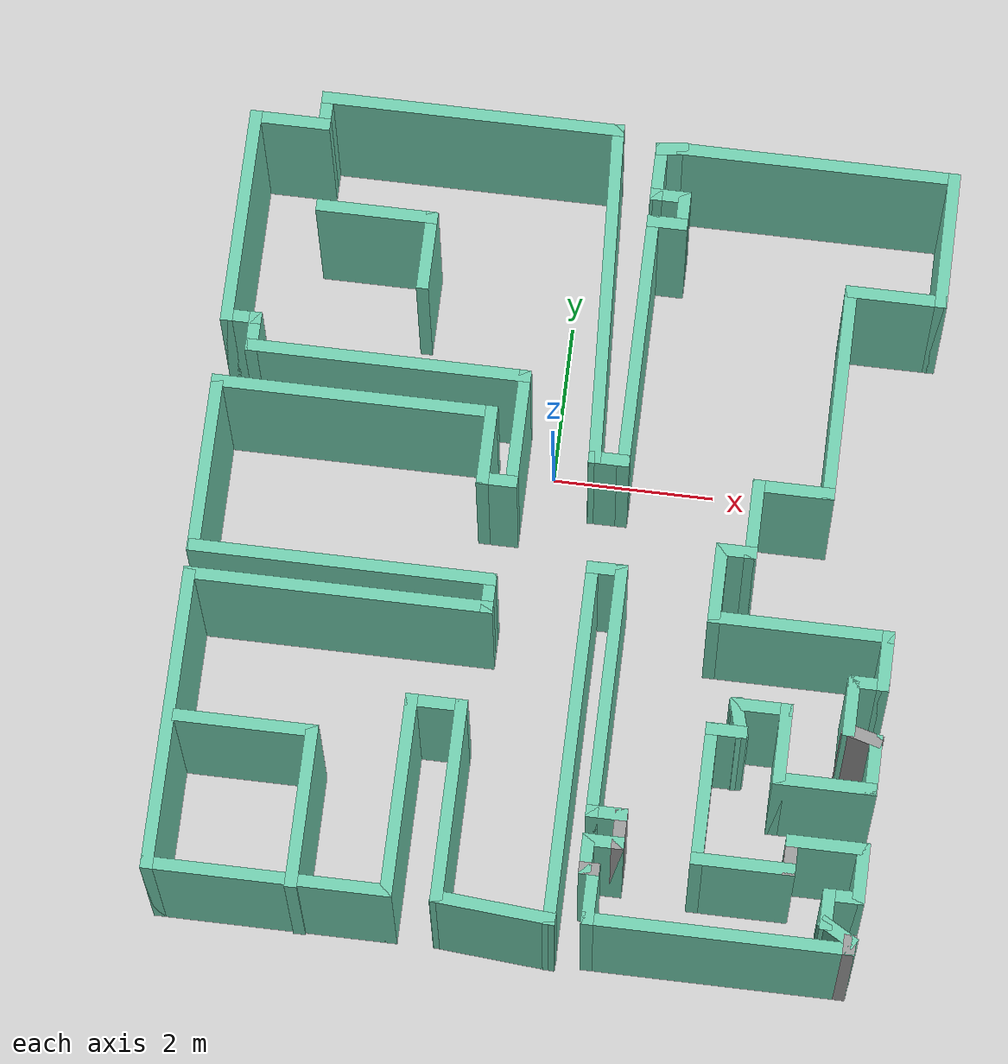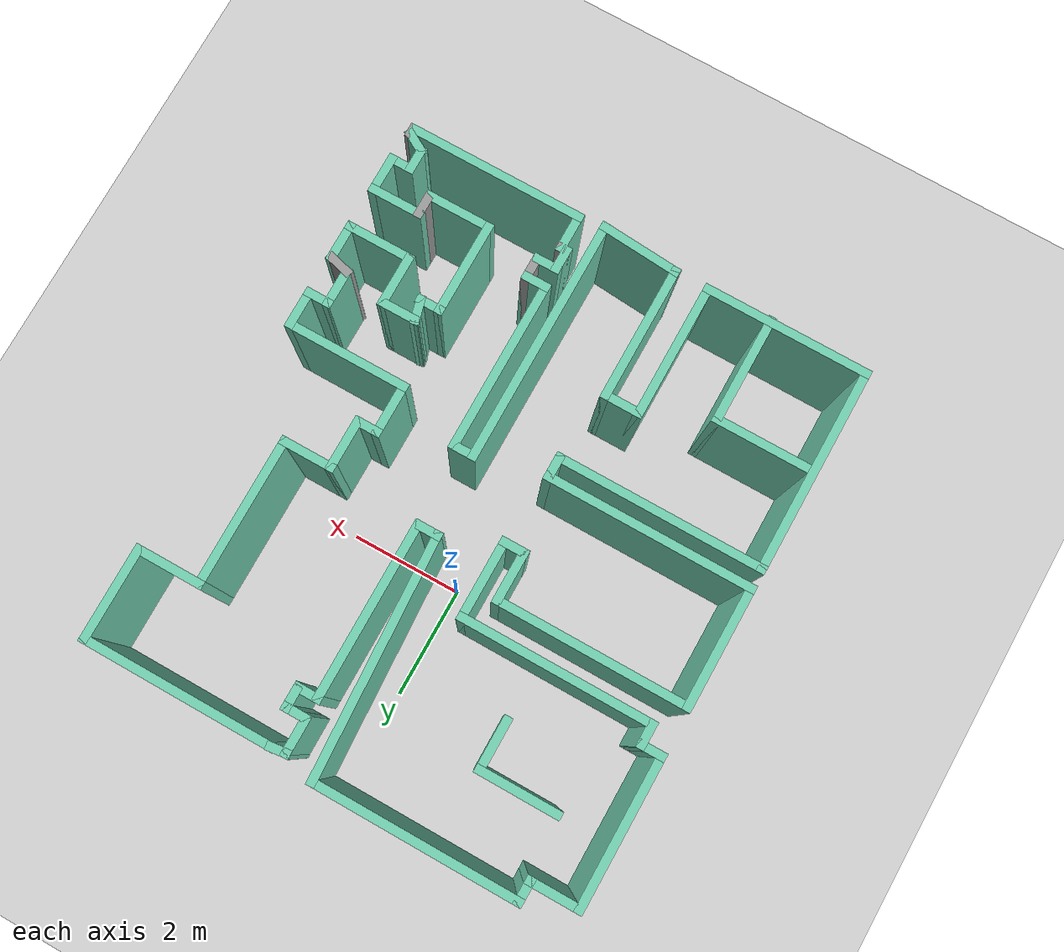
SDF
<sdf version="1.6">
 <world name="default">
  <light name="sun" type="directional">
   <pose>0 0 10 0 -0 0</pose>
   <diffuse>0.8 0.8 0.8 1</diffuse>
   <specular>0.2 0.2 0.2 1</specular>
   <attenuation>
    <range>1000</range>
    <constant>0.9</constant>
    <linear>0.01</linear>
    <quadratic>0.001</quadratic>
   </attenuation>
   <direction>-0.5 0.1 -0.9</direction>
  </light>
  <model name="ground_plane">
   <static>1</static>
   <link name="link">
    <collision name="collision">
     <geometry><plane><normal>0 0 1</normal><size>100 100</size></plane></geometry>
     <surface>
      <contact><collide_bitmask>65535</collide_bitmask></contact>
      <friction><ode><mu>100</mu><mu2>50</mu2></ode></friction>
     </surface>
    </collision>
    <visual name="visual">
     <cast_shadows>0</cast_shadows>
     <geometry><plane><normal>0 0 1</normal><size>100 100</size></plane></geometry>
     <material>
      <script><uri>file://media/materials/scripts/gazebo.material</uri><name>Gazebo/Grey</name></script>
     </material>
    </visual>
   </link>
  </model>
  <gravity>0 0 -9.8</gravity>
  <magnetic_field>6e-06 2.3e-05 -4.2e-05</magnetic_field>
  <atmosphere type="adiabatic"/>
  <physics name="default_physics" default="0" type="ode">
   <max_step_size>0.001</max_step_size>
   <real_time_factor>1</real_time_factor>
   <real_time_update_rate>1000</real_time_update_rate>
  </physics>
  <scene><ambient>0.4 0.4 0.4 1</ambient><background>0.7 0.7 0.7 1</background><shadows>1</shadows></scene>
  <audio><device>default</device></audio>
  <spherical_coordinates>
   <surface_model>EARTH_WGS84</surface_model>
   <latitude_deg>0</latitude_deg>
   <longitude_deg>0</longitude_deg>
   <elevation>0</elevation>
   <heading_deg>0</heading_deg>
  </spherical_coordinates>
  <model name="map_58">
   <pose>0.196193 -1.18097 0 0 -0 0</pose>
   <link name="Wall_0">
    <collision name="Wall_0_Collision">
     <geometry><box><size>3.75 0.15 2.5</size></box></geometry>
     <pose>0 0 1.25 0 -0 0</pose>
    </collision>
    <visual name="Wall_0_Visual">
     <pose>0 0 1.25 0 -0 0</pose>
     <geometry><box><size>3.75 0.15 2.5</size></box></geometry>
     <material>
      <script><uri>file://media/materials/scripts/gazebo.material</uri><name>Gazebo/Grey</name></script>
      <ambient>0.435294 0.796078 0.67451 1</ambient>
     </material>
     <meta><layer>0</layer></meta>
    </visual>
    <pose>-1.65911 4.97874 0 0 -0 3.14159</pose>
   </link>
   <link name="Wall_1">
    <collision name="Wall_1_Collision">
     <geometry><box><size>0.5 0.15 2.5</size></box></geometry>
     <pose>0 0 1.25 0 -0 0</pose>
    </collision>
    <visual name="Wall_1_Visual">
     <pose>0 0 1.25 0 -0 0</pose>
     <geometry><box><size>0.5 0.15 2.5</size></box></geometry>
     <material>
      <script><uri>file://media/materials/scripts/gazebo.material</uri><name>Gazebo/Grey</name></script>
      <ambient>0.435294 0.796078 0.67451 1</ambient>
     </material>
     <meta><layer>0</layer></meta>
    </visual>
    <pose>-3.45912 4.80374 0 0 -0 -1.5708</pose>
   </link>
   <link name="Wall_10">
    <collision name="Wall_10_Collision">
     <geometry><box><size>0.5 0.15 2.5</size></box></geometry>
     <pose>0 0 1.25 0 -0 0</pose>
    </collision>
    <visual name="Wall_10_Visual">
     <pose>0 0 1.25 0 -0 0</pose>
     <geometry><box><size>0.5 0.15 2.5</size></box></geometry>
     <material>
      <script><uri>file://media/materials/scripts/gazebo.material</uri><name>Gazebo/Grey</name></script>
      <ambient>0.435294 0.796078 0.67451 1</ambient>
     </material>
     <meta><layer>0</layer></meta>
    </visual>
    <pose>-0.784115 0.328738 0 0 -0 3.14159</pose>
   </link>
   <link name="Wall_13">
    <collision name="Wall_13_Collision">
     <geometry><box><size>1 0.15 2.5</size></box></geometry>
     <pose>0 0 1.25 0 -0 0</pose>
    </collision>
    <visual name="Wall_13_Visual">
     <pose>0 0 1.25 0 -0 0</pose>
     <geometry><box><size>1 0.15 2.5</size></box></geometry>
     <material>
      <script><uri>file://media/materials/scripts/gazebo.material</uri><name>Gazebo/Grey</name></script>
      <ambient>0.435294 0.796078 0.67451 1</ambient>
     </material>
     <meta><layer>0</layer></meta>
    </visual>
    <pose>-0.959115 0.753738 0 0 -0 1.5708</pose>
   </link>
   <link name="Wall_14">
    <collision name="Wall_14_Collision">
     <geometry><box><size>3.5 0.15 2.5</size></box></geometry>
     <pose>0 0 1.25 0 -0 0</pose>
    </collision>
    <visual name="Wall_14_Visual">
     <pose>0 0 1.25 0 -0 0</pose>
     <geometry><box><size>3.5 0.15 2.5</size></box></geometry>
     <material>
      <script><uri>file://media/materials/scripts/gazebo.material</uri><name>Gazebo/Grey</name></script>
      <ambient>0.435294 0.796078 0.67451 1</ambient>
     </material>
     <meta><layer>0</layer></meta>
    </visual>
    <pose>-2.63411 1.17874 0 0 -0 3.14159</pose>
   </link>
   <link name="Wall_15">
    <collision name="Wall_15_Collision">
     <geometry><box><size>2.25 0.15 2.5</size></box></geometry>
     <pose>0 0 1.25 0 -0 0</pose>
    </collision>
    <visual name="Wall_15_Visual">
     <pose>0 0 1.25 0 -0 0</pose>
     <geometry><box><size>2.25 0.15 2.5</size></box></geometry>
     <material>
      <script><uri>file://media/materials/scripts/gazebo.material</uri><name>Gazebo/Grey</name></script>
      <ambient>0.435294 0.796078 0.67451 1</ambient>
     </material>
     <meta><layer>0</layer></meta>
    </visual>
    <pose>-4.30912 0.128738 0 0 -0 -1.5708</pose>
   </link>
   <link name="Wall_16">
    <collision name="Wall_16_Collision">
     <geometry><box><size>3.75 0.15 2.5</size></box></geometry>
     <pose>0 0 1.25 0 -0 0</pose>
    </collision>
    <visual name="Wall_16_Visual">
     <pose>0 0 1.25 0 -0 0</pose>
     <geometry><box><size>3.75 0.15 2.5</size></box></geometry>
     <material>
      <script><uri>file://media/materials/scripts/gazebo.material</uri><name>Gazebo/Grey</name></script>
      <ambient>0.435294 0.796078 0.67451 1</ambient>
     </material>
     <meta><layer>0</layer></meta>
    </visual>
    <pose>-2.50911 -0.921263 0 0 -0 0</pose>
   </link>
   <link name="Wall_17">
    <collision name="Wall_17_Collision">
     <geometry><box><size>0.5 0.15 2.5</size></box></geometry>
     <pose>0 0 1.25 0 -0 0</pose>
    </collision>
    <visual name="Wall_17_Visual">
     <pose>0 0 1.25 0 -0 0</pose>
     <geometry><box><size>0.5 0.15 2.5</size></box></geometry>
     <material>
      <script><uri>file://media/materials/scripts/gazebo.material</uri><name>Gazebo/Grey</name></script>
      <ambient>0.435294 0.796078 0.67451 1</ambient>
     </material>
     <meta><layer>0</layer></meta>
    </visual>
    <pose>-0.709115 -1.09626 0 0 -0 -1.5708</pose>
   </link>
   <link name="Wall_18">
    <collision name="Wall_18_Collision">
     <geometry><box><size>3.75 0.15 2.5</size></box></geometry>
     <pose>0 0 1.25 0 -0 0</pose>
    </collision>
    <visual name="Wall_18_Visual">
     <pose>0 0 1.25 0 -0 0</pose>
     <geometry><box><size>3.75 0.15 2.5</size></box></geometry>
     <material>
      <script><uri>file://media/materials/scripts/gazebo.material</uri><name>Gazebo/Grey</name></script>
      <ambient>0.435294 0.796078 0.67451 1</ambient>
     </material>
     <meta><layer>0</layer></meta>
    </visual>
    <pose>-2.50911 -1.27126 0 0 -0 3.14159</pose>
   </link>
   <link name="Wall_2">
    <collision name="Wall_2_Collision">
     <geometry><box><size>1 0.15 2.5</size></box></geometry>
     <pose>0 0 1.25 0 -0 0</pose>
    </collision>
    <visual name="Wall_2_Visual">
     <pose>0 0 1.25 0 -0 0</pose>
     <geometry><box><size>1 0.15 2.5</size></box></geometry>
     <material>
      <script><uri>file://media/materials/scripts/gazebo.material</uri><name>Gazebo/Grey</name></script>
      <ambient>0.435294 0.796078 0.67451 1</ambient>
     </material>
     <meta><layer>0</layer></meta>
    </visual>
    <pose>-3.88411 4.62874 0 0 -0 3.14159</pose>
   </link>
   <link name="Wall_21">
    <collision name="Wall_21_Collision">
     <geometry><box><size>3.75 0.15 2.5</size></box></geometry>
     <pose>0 0 1.25 0 -0 0</pose>
    </collision>
    <visual name="Wall_21_Visual">
     <pose>0 0 1.25 0 -0 0</pose>
     <geometry><box><size>3.75 0.15 2.5</size></box></geometry>
     <material>
      <script><uri>file://media/materials/scripts/gazebo.material</uri><name>Gazebo/Grey</name></script>
      <ambient>0.435294 0.796078 0.67451 1</ambient>
     </material>
     <meta><layer>0</layer></meta>
    </visual>
    <pose>-4.30912 -3.07126 0 0 -0 -1.5708</pose>
   </link>
   <link name="Wall_22">
    <collision name="Wall_22_Collision">
     <geometry><box><size>3 0.15 2.5</size></box></geometry>
     <pose>0 0 1.25 0 -0 0</pose>
    </collision>
    <visual name="Wall_22_Visual">
     <pose>0 0 1.25 0 -0 0</pose>
     <geometry><box><size>3 0.15 2.5</size></box></geometry>
     <material>
      <script><uri>file://media/materials/scripts/gazebo.material</uri><name>Gazebo/Grey</name></script>
      <ambient>0.435294 0.796078 0.67451 1</ambient>
     </material>
     <meta><layer>0</layer></meta>
    </visual>
    <pose>-2.88411 -4.87126 0 0 -0 0</pose>
   </link>
   <link name="Wall_23">
    <collision name="Wall_23_Collision">
     <geometry><box><size>2.5 0.15 2.5</size></box></geometry>
     <pose>0 0 1.25 0 -0 0</pose>
    </collision>
    <visual name="Wall_23_Visual">
     <pose>0 0 1.25 0 -0 0</pose>
     <geometry><box><size>2.5 0.15 2.5</size></box></geometry>
     <material>
      <script><uri>file://media/materials/scripts/gazebo.material</uri><name>Gazebo/Grey</name></script>
      <ambient>0.435294 0.796078 0.67451 1</ambient>
     </material>
     <meta><layer>0</layer></meta>
    </visual>
    <pose>-1.45911 -3.69626 0 0 -0 1.5708</pose>
   </link>
   <link name="Wall_24">
    <collision name="Wall_24_Collision">
     <geometry><box><size>0.75 0.15 2.5</size></box></geometry>
     <pose>0 0 1.25 0 -0 0</pose>
    </collision>
    <visual name="Wall_24_Visual">
     <pose>0 0 1.25 0 -0 0</pose>
     <geometry><box><size>0.75 0.15 2.5</size></box></geometry>
     <material>
      <script><uri>file://media/materials/scripts/gazebo.material</uri><name>Gazebo/Grey</name></script>
      <ambient>0.435294 0.796078 0.67451 1</ambient>
     </material>
     <meta><layer>0</layer></meta>
    </visual>
    <pose>-1.15911 -2.52126 0 0 -0 0</pose>
   </link>
   <link name="Wall_25">
    <collision name="Wall_25_Collision">
     <geometry><box><size>2.5 0.15 2.5</size></box></geometry>
     <pose>0 0 1.25 0 -0 0</pose>
    </collision>
    <visual name="Wall_25_Visual">
     <pose>0 0 1.25 0 -0 0</pose>
     <geometry><box><size>2.5 0.15 2.5</size></box></geometry>
     <material>
      <script><uri>file://media/materials/scripts/gazebo.material</uri><name>Gazebo/Grey</name></script>
      <ambient>0.435294 0.796078 0.67451 1</ambient>
     </material>
     <meta><layer>0</layer></meta>
    </visual>
    <pose>-0.859115 -3.69626 0 0 -0 -1.5708</pose>
   </link>
   <link name="Wall_26">
    <collision name="Wall_26_Collision">
     <geometry><box><size>1.50412 0.15 2.5</size></box></geometry>
     <pose>0 0 1.25 0 -0 0</pose>
    </collision>
    <visual name="Wall_26_Visual">
     <pose>0 0 1.25 0 -0 0</pose>
     <geometry><box><size>1.50412 0.15 2.5</size></box></geometry>
     <material>
      <script><uri>file://media/materials/scripts/gazebo.material</uri><name>Gazebo/Grey</name></script>
      <ambient>0.435294 0.796078 0.67451 1</ambient>
     </material>
     <meta><layer>0</layer></meta>
    </visual>
    <pose>-0.184115 -4.92403 0 0 -0 -0.078016</pose>
   </link>
   <link name="Wall_3">
    <collision name="Wall_3_Collision">
     <geometry><box><size>2.75 0.15 2.5</size></box></geometry>
     <pose>0 0 1.25 0 -0 0</pose>
    </collision>
    <visual name="Wall_3_Visual">
     <pose>0 0 1.25 0 -0 0</pose>
     <geometry><box><size>2.75 0.15 2.5</size></box></geometry>
     <material>
      <script><uri>file://media/materials/scripts/gazebo.material</uri><name>Gazebo/Grey</name></script>
      <ambient>0.435294 0.796078 0.67451 1</ambient>
     </material>
     <meta><layer>0</layer></meta>
    </visual>
    <pose>-4.30912 3.32874 0 0 -0 -1.5708</pose>
   </link>
   <link name="Wall_30">
    <collision name="Wall_30_Collision">
     <geometry><box><size>0.5 0.15 2.5</size></box></geometry>
     <pose>0 0 1.25 0 -0 0</pose>
    </collision>
    <visual name="Wall_30_Visual">
     <pose>0 0 1.25 0 -0 0</pose>
     <geometry><box><size>0.5 0.15 2.5</size></box></geometry>
     <material>
      <script><uri>file://media/materials/scripts/gazebo.material</uri><name>Gazebo/Grey</name></script>
      <ambient>0.435294 0.796078 0.67451 1</ambient>
     </material>
     <meta><layer>0</layer></meta>
    </visual>
    <pose>1.01588 -3.62126 0 0 -0 0</pose>
   </link>
   <link name="Wall_31">
    <collision name="Wall_31_Collision">
     <geometry><box><size>0.5 0.15 2.5</size></box></geometry>
     <pose>0 0 1.25 0 -0 0</pose>
    </collision>
    <visual name="Wall_31_Visual">
     <pose>0 0 1.25 0 -0 0</pose>
     <geometry><box><size>0.5 0.15 2.5</size></box></geometry>
     <material>
      <script><uri>file://media/materials/scripts/gazebo.material</uri><name>Gazebo/Grey</name></script>
      <ambient>1 1 1 1</ambient>
     </material>
     <meta><layer>0</layer></meta>
    </visual>
    <pose>1.19088 -3.79626 0 0 -0 -1.5708</pose>
   </link>
   <link name="Wall_32">
    <collision name="Wall_32_Collision">
     <geometry><box><size>0.5 0.15 2.5</size></box></geometry>
     <pose>0 0 1.25 0 -0 0</pose>
    </collision>
    <visual name="Wall_32_Visual">
     <pose>0 0 1.25 0 -0 0</pose>
     <geometry><box><size>0.5 0.15 2.5</size></box></geometry>
     <material>
      <script><uri>file://media/materials/scripts/gazebo.material</uri><name>Gazebo/Grey</name></script>
      <ambient>0.435294 0.796078 0.67451 1</ambient>
     </material>
     <meta><layer>0</layer></meta>
    </visual>
    <pose>1.01588 -3.97126 0 0 -0 3.14159</pose>
   </link>
   <link name="Wall_33">
    <collision name="Wall_33_Collision">
     <geometry><box><size>0.5 0.15 2.5</size></box></geometry>
     <pose>0 0 1.25 0 -0 0</pose>
    </collision>
    <visual name="Wall_33_Visual">
     <pose>0 0 1.25 0 -0 0</pose>
     <geometry><box><size>0.5 0.15 2.5</size></box></geometry>
     <material>
      <script><uri>file://media/materials/scripts/gazebo.material</uri><name>Gazebo/Grey</name></script>
      <ambient>0.435294 0.796078 0.67451 1</ambient>
     </material>
     <meta><layer>0</layer></meta>
    </visual>
    <pose>0.840885 -4.14626 0 0 -0 -1.5708</pose>
   </link>
   <link name="Wall_34">
    <collision name="Wall_34_Collision">
     <geometry><box><size>0.25 0.15 2.5</size></box></geometry>
     <pose>0 0 1.25 0 -0 0</pose>
    </collision>
    <visual name="Wall_34_Visual">
     <pose>0 0 1.25 0 -0 0</pose>
     <geometry><box><size>0.25 0.15 2.5</size></box></geometry>
     <material>
      <script><uri>file://media/materials/scripts/gazebo.material</uri><name>Gazebo/Grey</name></script>
      <ambient>1 1 1 1</ambient>
     </material>
     <meta><layer>0</layer></meta>
    </visual>
    <pose>0.890885 -4.32126 0 0 -0 0</pose>
   </link>
   <link name="Wall_35">
    <collision name="Wall_35_Collision">
     <geometry><box><size>0.75 0.15 2.5</size></box></geometry>
     <pose>0 0 1.25 0 -0 0</pose>
    </collision>
    <visual name="Wall_35_Visual">
     <pose>0 0 1.25 0 -0 0</pose>
     <geometry><box><size>0.75 0.15 2.5</size></box></geometry>
     <material>
      <script><uri>file://media/materials/scripts/gazebo.material</uri><name>Gazebo/Grey</name></script>
      <ambient>0.435294 0.796078 0.67451 1</ambient>
     </material>
     <meta><layer>0</layer></meta>
    </visual>
    <pose>0.940885 -4.62126 0 0 -0 -1.5708</pose>
   </link>
   <link name="Wall_36">
    <collision name="Wall_36_Collision">
     <geometry><box><size>3.25 0.15 2.5</size></box></geometry>
     <pose>0 0 1.25 0 -0 0</pose>
    </collision>
    <visual name="Wall_36_Visual">
     <pose>0 0 1.25 0 -0 0</pose>
     <geometry><box><size>3.25 0.15 2.5</size></box></geometry>
     <material>
      <script><uri>file://media/materials/scripts/gazebo.material</uri><name>Gazebo/Grey</name></script>
      <ambient>0.435294 0.796078 0.67451 1</ambient>
     </material>
     <meta><layer>0</layer></meta>
    </visual>
    <pose>2.49089 -4.92126 0 0 -0 0</pose>
   </link>
   <link name="Wall_37">
    <collision name="Wall_37_Collision">
     <geometry><box><size>0.25 0.15 2.5</size></box></geometry>
     <pose>0 0 1.25 0 -0 0</pose>
    </collision>
    <visual name="Wall_37_Visual">
     <pose>0 0 1.25 0 -0 0</pose>
     <geometry><box><size>0.25 0.15 2.5</size></box></geometry>
     <material>
      <script><uri>file://media/materials/scripts/gazebo.material</uri><name>Gazebo/Grey</name></script>
      <ambient>1 1 1 1</ambient>
     </material>
     <meta><layer>0</layer></meta>
    </visual>
    <pose>4.04089 -4.87126 0 0 -0 1.5708</pose>
   </link>
   <link name="Wall_38">
    <collision name="Wall_38_Collision">
     <geometry><box><size>0.5 0.15 2.5</size></box></geometry>
     <pose>0 0 1.25 0 -0 0</pose>
    </collision>
    <visual name="Wall_38_Visual">
     <pose>0 0 1.25 0 -0 0</pose>
     <geometry><box><size>0.5 0.15 2.5</size></box></geometry>
     <material>
      <script><uri>file://media/materials/scripts/gazebo.material</uri><name>Gazebo/Grey</name></script>
      <ambient>0.435294 0.796078 0.67451 1</ambient>
     </material>
     <meta><layer>0</layer></meta>
    </visual>
    <pose>3.88933 -4.73376 0 0 -0 2.61799</pose>
   </link>
   <link name="Wall_39">
    <collision name="Wall_39_Collision">
     <geometry><box><size>0.5 0.15 2.5</size></box></geometry>
     <pose>0 0 1.25 0 -0 0</pose>
    </collision>
    <visual name="Wall_39_Visual">
     <pose>0 0 1.25 0 -0 0</pose>
     <geometry><box><size>0.5 0.15 2.5</size></box></geometry>
     <material>
      <script><uri>file://media/materials/scripts/gazebo.material</uri><name>Gazebo/Grey</name></script>
      <ambient>0.435294 0.796078 0.67451 1</ambient>
     </material>
     <meta><layer>0</layer></meta>
    </visual>
    <pose>3.73778 -4.47126 0 0 -0 1.5708</pose>
   </link>
   <link name="Wall_4">
    <collision name="Wall_4_Collision">
     <geometry><box><size>0.5 0.15 2.5</size></box></geometry>
     <pose>0 0 1.25 0 -0 0</pose>
    </collision>
    <visual name="Wall_4_Visual">
     <pose>0 0 1.25 0 -0 0</pose>
     <geometry><box><size>0.5 0.15 2.5</size></box></geometry>
     <material>
      <script><uri>file://media/materials/scripts/gazebo.material</uri><name>Gazebo/Grey</name></script>
      <ambient>0.435294 0.796078 0.67451 1</ambient>
     </material>
     <meta><layer>0</layer></meta>
    </visual>
    <pose>-4.13412 2.02874 0 0 -0 0</pose>
   </link>
   <link name="Wall_40">
    <collision name="Wall_40_Collision">
     <geometry><box><size>0.5 0.15 2.5</size></box></geometry>
     <pose>0 0 1.25 0 -0 0</pose>
    </collision>
    <visual name="Wall_40_Visual">
     <pose>0 0 1.25 0 -0 0</pose>
     <geometry><box><size>0.5 0.15 2.5</size></box></geometry>
     <material>
      <script><uri>file://media/materials/scripts/gazebo.material</uri><name>Gazebo/Grey</name></script>
      <ambient>0.435294 0.796078 0.67451 1</ambient>
     </material>
     <meta><layer>0</layer></meta>
    </visual>
    <pose>3.91278 -4.29626 0 0 -0 0</pose>
   </link>
   <link name="Wall_41">
    <collision name="Wall_41_Collision">
     <geometry><box><size>0.75 0.15 2.5</size></box></geometry>
     <pose>0 0 1.25 0 -0 0</pose>
    </collision>
    <visual name="Wall_41_Visual">
     <pose>0 0 1.25 0 -0 0</pose>
     <geometry><box><size>0.75 0.15 2.5</size></box></geometry>
     <material>
      <script><uri>file://media/materials/scripts/gazebo.material</uri><name>Gazebo/Grey</name></script>
      <ambient>0.435294 0.796078 0.67451 1</ambient>
     </material>
     <meta><layer>0</layer></meta>
    </visual>
    <pose>4.08778 -3.99626 0 0 -0 1.5708</pose>
   </link>
   <link name="Wall_42">
    <collision name="Wall_42_Collision">
     <geometry><box><size>1 0.15 2.5</size></box></geometry>
     <pose>0 0 1.25 0 -0 0</pose>
    </collision>
    <visual name="Wall_42_Visual">
     <pose>0 0 1.25 0 -0 0</pose>
     <geometry><box><size>1 0.15 2.5</size></box></geometry>
     <material>
      <script><uri>file://media/materials/scripts/gazebo.material</uri><name>Gazebo/Grey</name></script>
      <ambient>0.435294 0.796078 0.67451 1</ambient>
     </material>
     <meta><layer>0</layer></meta>
    </visual>
    <pose>3.66278 -3.69626 0 0 -0 3.14159</pose>
   </link>
   <link name="Wall_43">
    <collision name="Wall_43_Collision">
     <geometry><box><size>0.5 0.15 2.5</size></box></geometry>
     <pose>0 0 1.25 0 -0 0</pose>
    </collision>
    <visual name="Wall_43_Visual">
     <pose>0 0 1.25 0 -0 0</pose>
     <geometry><box><size>0.5 0.15 2.5</size></box></geometry>
     <material>
      <script><uri>file://media/materials/scripts/gazebo.material</uri><name>Gazebo/Grey</name></script>
      <ambient>1 1 1 1</ambient>
     </material>
     <meta><layer>0</layer></meta>
    </visual>
    <pose>3.23778 -3.87126 0 0 -0 -1.5708</pose>
   </link>
   <link name="Wall_44">
    <collision name="Wall_44_Collision">
     <geometry><box><size>1.25 0.15 2.5</size></box></geometry>
     <pose>0 0 1.25 0 -0 0</pose>
    </collision>
    <visual name="Wall_44_Visual">
     <pose>0 0 1.25 0 -0 0</pose>
     <geometry><box><size>1.25 0.15 2.5</size></box></geometry>
     <material>
      <script><uri>file://media/materials/scripts/gazebo.material</uri><name>Gazebo/Grey</name></script>
      <ambient>0.435294 0.796078 0.67451 1</ambient>
     </material>
     <meta><layer>0</layer></meta>
    </visual>
    <pose>2.68778 -4.04626 0 0 -0 3.14159</pose>
   </link>
   <link name="Wall_47">
    <collision name="Wall_47_Collision">
     <geometry><box><size>1.75 0.15 2.5</size></box></geometry>
     <pose>0 0 1.25 0 -0 0</pose>
    </collision>
    <visual name="Wall_47_Visual">
     <pose>0 0 1.25 0 -0 0</pose>
     <geometry><box><size>1.75 0.15 2.5</size></box></geometry>
     <material>
      <script><uri>file://media/materials/scripts/gazebo.material</uri><name>Gazebo/Grey</name></script>
      <ambient>0.435294 0.796078 0.67451 1</ambient>
     </material>
     <meta><layer>0</layer></meta>
    </visual>
    <pose>2.13778 -3.24626 0 0 -0 1.5708</pose>
   </link>
   <link name="Wall_48">
    <collision name="Wall_48_Collision">
     <geometry><box><size>0.5 0.15 2.5</size></box></geometry>
     <pose>0 0 1.25 0 -0 0</pose>
    </collision>
    <visual name="Wall_48_Visual">
     <pose>0 0 1.25 0 -0 0</pose>
     <geometry><box><size>0.5 0.15 2.5</size></box></geometry>
     <material>
      <script><uri>file://media/materials/scripts/gazebo.material</uri><name>Gazebo/Grey</name></script>
      <ambient>0.435294 0.796078 0.67451 1</ambient>
     </material>
     <meta><layer>0</layer></meta>
    </visual>
    <pose>2.31278 -2.44626 0 0 -0 0</pose>
   </link>
   <link name="Wall_49">
    <collision name="Wall_49_Collision">
     <geometry><box><size>0.5 0.15 2.5</size></box></geometry>
     <pose>0 0 1.25 0 -0 0</pose>
    </collision>
    <visual name="Wall_49_Visual">
     <pose>0 0 1.25 0 -0 0</pose>
     <geometry><box><size>0.5 0.15 2.5</size></box></geometry>
     <material>
      <script><uri>file://media/materials/scripts/gazebo.material</uri><name>Gazebo/Grey</name></script>
      <ambient>0.435294 0.796078 0.67451 1</ambient>
     </material>
     <meta><layer>0</layer></meta>
    </visual>
    <pose>2.44248 -2.27723 0 0 -0 1.8326</pose>
   </link>
   <link name="Wall_50">
    <collision name="Wall_50_Collision">
     <geometry><box><size>0.75 0.15 2.5</size></box></geometry>
     <pose>0 0 1.25 0 -0 0</pose>
    </collision>
    <visual name="Wall_50_Visual">
     <pose>0 0 1.25 0 -0 0</pose>
     <geometry><box><size>0.75 0.15 2.5</size></box></geometry>
     <material>
      <script><uri>file://media/materials/scripts/gazebo.material</uri><name>Gazebo/Grey</name></script>
      <ambient>0.435294 0.796078 0.67451 1</ambient>
     </material>
     <meta><layer>0</layer></meta>
    </visual>
    <pose>2.69719 -2.10819 0 0 -0 0</pose>
   </link>
   <link name="Wall_51">
    <collision name="Wall_51_Collision">
     <geometry><box><size>1 0.15 2.5</size></box></geometry>
     <pose>0 0 1.25 0 -0 0</pose>
    </collision>
    <visual name="Wall_51_Visual">
     <pose>0 0 1.25 0 -0 0</pose>
     <geometry><box><size>1 0.15 2.5</size></box></geometry>
     <material>
      <script><uri>file://media/materials/scripts/gazebo.material</uri><name>Gazebo/Grey</name></script>
      <ambient>0.435294 0.796078 0.67451 1</ambient>
     </material>
     <meta><layer>0</layer></meta>
    </visual>
    <pose>2.99719 -2.53319 0 0 -0 -1.5708</pose>
   </link>
   <link name="Wall_52">
    <collision name="Wall_52_Collision">
     <geometry><box><size>1.25 0.15 2.5</size></box></geometry>
     <pose>0 0 1.25 0 -0 0</pose>
    </collision>
    <visual name="Wall_52_Visual">
     <pose>0 0 1.25 0 -0 0</pose>
     <geometry><box><size>1.25 0.15 2.5</size></box></geometry>
     <material>
      <script><uri>file://media/materials/scripts/gazebo.material</uri><name>Gazebo/Grey</name></script>
      <ambient>0.435294 0.796078 0.67451 1</ambient>
     </material>
     <meta><layer>0</layer></meta>
    </visual>
    <pose>3.54719 -2.95819 0 0 -0 0</pose>
   </link>
   <link name="Wall_53">
    <collision name="Wall_53_Collision">
     <geometry><box><size>0.75 0.15 2.5</size></box></geometry>
     <pose>0 0 1.25 0 -0 0</pose>
    </collision>
    <visual name="Wall_53_Visual">
     <pose>0 0 1.25 0 -0 0</pose>
     <geometry><box><size>0.75 0.15 2.5</size></box></geometry>
     <material>
      <script><uri>file://media/materials/scripts/gazebo.material</uri><name>Gazebo/Grey</name></script>
      <ambient>0.435294 0.796078 0.67451 1</ambient>
     </material>
     <meta><layer>0</layer></meta>
    </visual>
    <pose>4.09719 -2.65819 0 0 -0 1.5708</pose>
   </link>
   <link name="Wall_54">
    <collision name="Wall_54_Collision">
     <geometry><box><size>0.5 0.15 2.5</size></box></geometry>
     <pose>0 0 1.25 0 -0 0</pose>
    </collision>
    <visual name="Wall_54_Visual">
     <pose>0 0 1.25 0 -0 0</pose>
     <geometry><box><size>0.5 0.15 2.5</size></box></geometry>
     <material>
      <script><uri>file://media/materials/scripts/gazebo.material</uri><name>Gazebo/Grey</name></script>
      <ambient>1 1 1 1</ambient>
     </material>
     <meta><layer>0</layer></meta>
    </visual>
    <pose>3.92815 -2.3129 0 0 -0 2.87979</pose>
   </link>
   <link name="Wall_55">
    <collision name="Wall_55_Collision">
     <geometry><box><size>0.75 0.15 2.5</size></box></geometry>
     <pose>0 0 1.25 0 -0 0</pose>
    </collision>
    <visual name="Wall_55_Visual">
     <pose>0 0 1.25 0 -0 0</pose>
     <geometry><box><size>0.75 0.15 2.5</size></box></geometry>
     <material>
      <script><uri>file://media/materials/scripts/gazebo.material</uri><name>Gazebo/Grey</name></script>
      <ambient>0.435294 0.796078 0.67451 1</ambient>
     </material>
     <meta><layer>0</layer></meta>
    </visual>
    <pose>3.75911 -1.9676 0 0 -0 1.5708</pose>
   </link>
   <link name="Wall_56">
    <collision name="Wall_56_Collision">
     <geometry><box><size>0.5 0.15 2.5</size></box></geometry>
     <pose>0 0 1.25 0 -0 0</pose>
    </collision>
    <visual name="Wall_56_Visual">
     <pose>0 0 1.25 0 -0 0</pose>
     <geometry><box><size>0.5 0.15 2.5</size></box></geometry>
     <material>
      <script><uri>file://media/materials/scripts/gazebo.material</uri><name>Gazebo/Grey</name></script>
      <ambient>0.435294 0.796078 0.67451 1</ambient>
     </material>
     <meta><layer>0</layer></meta>
    </visual>
    <pose>3.93411 -1.6676 0 0 -0 0</pose>
   </link>
   <link name="Wall_57">
    <collision name="Wall_57_Collision">
     <geometry><box><size>0.75 0.15 2.5</size></box></geometry>
     <pose>0 0 1.25 0 -0 0</pose>
    </collision>
    <visual name="Wall_57_Visual">
     <pose>0 0 1.25 0 -0 0</pose>
     <geometry><box><size>0.75 0.15 2.5</size></box></geometry>
     <material>
      <script><uri>file://media/materials/scripts/gazebo.material</uri><name>Gazebo/Grey</name></script>
      <ambient>0.435294 0.796078 0.67451 1</ambient>
     </material>
     <meta><layer>0</layer></meta>
    </visual>
    <pose>4.10912 -1.3676 0 0 -0 1.5708</pose>
   </link>
   <link name="Wall_58">
    <collision name="Wall_58_Collision">
     <geometry><box><size>2.25 0.15 2.5</size></box></geometry>
     <pose>0 0 1.25 0 -0 0</pose>
    </collision>
    <visual name="Wall_58_Visual">
     <pose>0 0 1.25 0 -0 0</pose>
     <geometry><box><size>2.25 0.15 2.5</size></box></geometry>
     <material>
      <script><uri>file://media/materials/scripts/gazebo.material</uri><name>Gazebo/Grey</name></script>
      <ambient>0.435294 0.796078 0.67451 1</ambient>
     </material>
     <meta><layer>0</layer></meta>
    </visual>
    <pose>3.05911 -1.0676 0 0 -0 3.14159</pose>
   </link>
   <link name="Wall_67">
    <collision name="Wall_67_Collision">
     <geometry><box><size>1 0.15 2.5</size></box></geometry>
     <pose>0 0 1.25 0 -0 0</pose>
    </collision>
    <visual name="Wall_67_Visual">
     <pose>0 0 1.25 0 -0 0</pose>
     <geometry><box><size>1 0.15 2.5</size></box></geometry>
     <material>
      <script><uri>file://media/materials/scripts/gazebo.material</uri><name>Gazebo/Grey</name></script>
      <ambient>0.435294 0.796078 0.67451 1</ambient>
     </material>
     <meta><layer>0</layer></meta>
    </visual>
    <pose>2.00911 -0.642601 0 0 -0 1.5708</pose>
   </link>
   <link name="Wall_68">
    <collision name="Wall_68_Collision">
     <geometry><box><size>0.5 0.15 2.5</size></box></geometry>
     <pose>0 0 1.25 0 -0 0</pose>
    </collision>
    <visual name="Wall_68_Visual">
     <pose>0 0 1.25 0 -0 0</pose>
     <geometry><box><size>0.5 0.15 2.5</size></box></geometry>
     <material>
      <script><uri>file://media/materials/scripts/gazebo.material</uri><name>Gazebo/Grey</name></script>
      <ambient>0.435294 0.796078 0.67451 1</ambient>
     </material>
     <meta><layer>0</layer></meta>
    </visual>
    <pose>2.18411 -0.217602 0 0 -0 0</pose>
   </link>
   <link name="Wall_69">
    <collision name="Wall_69_Collision">
     <geometry><box><size>1 0.15 2.5</size></box></geometry>
     <pose>0 0 1.25 0 -0 0</pose>
    </collision>
    <visual name="Wall_69_Visual">
     <pose>0 0 1.25 0 -0 0</pose>
     <geometry><box><size>1 0.15 2.5</size></box></geometry>
     <material>
      <script><uri>file://media/materials/scripts/gazebo.material</uri><name>Gazebo/Grey</name></script>
      <ambient>0.435294 0.796078 0.67451 1</ambient>
     </material>
     <meta><layer>0</layer></meta>
    </visual>
    <pose>2.35912 0.207398 0 0 -0 1.5708</pose>
   </link>
   <link name="Wall_7">
    <collision name="Wall_7_Collision">
     <geometry><box><size>0.5 0.15 2.5</size></box></geometry>
     <pose>0 0 1.25 0 -0 0</pose>
    </collision>
    <visual name="Wall_7_Visual">
     <pose>0 0 1.25 0 -0 0</pose>
     <geometry><box><size>0.5 0.15 2.5</size></box></geometry>
     <material>
      <script><uri>file://media/materials/scripts/gazebo.material</uri><name>Gazebo/Grey</name></script>
      <ambient>0.435294 0.796078 0.67451 1</ambient>
     </material>
     <meta><layer>0</layer></meta>
    </visual>
    <pose>-3.95912 1.85374 0 0 -0 -1.5708</pose>
   </link>
   <link name="Wall_70">
    <collision name="Wall_70_Collision">
     <geometry><box><size>1 0.15 2.5</size></box></geometry>
     <pose>0 0 1.25 0 -0 0</pose>
    </collision>
    <visual name="Wall_70_Visual">
     <pose>0 0 1.25 0 -0 0</pose>
     <geometry><box><size>1 0.15 2.5</size></box></geometry>
     <material>
      <script><uri>file://media/materials/scripts/gazebo.material</uri><name>Gazebo/Grey</name></script>
      <ambient>0.435294 0.796078 0.67451 1</ambient>
     </material>
     <meta><layer>0</layer></meta>
    </visual>
    <pose>2.78411 0.632398 0 0 -0 0</pose>
   </link>
   <link name="Wall_71">
    <collision name="Wall_71_Collision">
     <geometry><box><size>2.75 0.15 2.5</size></box></geometry>
     <pose>0 0 1.25 0 -0 0</pose>
    </collision>
    <visual name="Wall_71_Visual">
     <pose>0 0 1.25 0 -0 0</pose>
     <geometry><box><size>2.75 0.15 2.5</size></box></geometry>
     <material>
      <script><uri>file://media/materials/scripts/gazebo.material</uri><name>Gazebo/Grey</name></script>
      <ambient>0.435294 0.796078 0.67451 1</ambient>
     </material>
     <meta><layer>0</layer></meta>
    </visual>
    <pose>3.20912 1.9324 0 0 -0 1.5708</pose>
   </link>
   <link name="Wall_72">
    <collision name="Wall_72_Collision">
     <geometry><box><size>1.25 0.15 2.5</size></box></geometry>
     <pose>0 0 1.25 0 -0 0</pose>
    </collision>
    <visual name="Wall_72_Visual">
     <pose>0 0 1.25 0 -0 0</pose>
     <geometry><box><size>1.25 0.15 2.5</size></box></geometry>
     <material>
      <script><uri>file://media/materials/scripts/gazebo.material</uri><name>Gazebo/Grey</name></script>
      <ambient>0.435294 0.796078 0.67451 1</ambient>
     </material>
     <meta><layer>0</layer></meta>
    </visual>
    <pose>3.75911 3.2324 0 0 -0 0</pose>
   </link>
   <link name="Wall_73">
    <collision name="Wall_73_Collision">
     <geometry><box><size>1.75 0.15 2.5</size></box></geometry>
     <pose>0 0 1.25 0 -0 0</pose>
    </collision>
    <visual name="Wall_73_Visual">
     <pose>0 0 1.25 0 -0 0</pose>
     <geometry><box><size>1.75 0.15 2.5</size></box></geometry>
     <material>
      <script><uri>file://media/materials/scripts/gazebo.material</uri><name>Gazebo/Grey</name></script>
      <ambient>0.435294 0.796078 0.67451 1</ambient>
     </material>
     <meta><layer>0</layer></meta>
    </visual>
    <pose>4.30912 4.0324 0 0 -0 1.5708</pose>
   </link>
   <link name="Wall_74">
    <collision name="Wall_74_Collision">
     <geometry><box><size>3.5 0.15 2.5</size></box></geometry>
     <pose>0 0 1.25 0 -0 0</pose>
    </collision>
    <visual name="Wall_74_Visual">
     <pose>0 0 1.25 0 -0 0</pose>
     <geometry><box><size>3.5 0.15 2.5</size></box></geometry>
     <material>
      <script><uri>file://media/materials/scripts/gazebo.material</uri><name>Gazebo/Grey</name></script>
      <ambient>0.435294 0.796078 0.67451 1</ambient>
     </material>
     <meta><layer>0</layer></meta>
    </visual>
    <pose>2.63411 4.8324 0 0 -0 3.14159</pose>
   </link>
   <link name="Wall_76">
    <collision name="Wall_76_Collision">
     <geometry><box><size>0.75 0.15 2.5</size></box></geometry>
     <pose>0 0 1.25 0 -0 0</pose>
    </collision>
    <visual name="Wall_76_Visual">
     <pose>0 0 1.25 0 -0 0</pose>
     <geometry><box><size>0.75 0.15 2.5</size></box></geometry>
     <material>
      <script><uri>file://media/materials/scripts/gazebo.material</uri><name>Gazebo/Grey</name></script>
      <ambient>0.435294 0.796078 0.67451 1</ambient>
     </material>
     <meta><layer>0</layer></meta>
    </visual>
    <pose>0.703745 4.50284 0 0 -0 -1.5708</pose>
   </link>
   <link name="Wall_77">
    <collision name="Wall_77_Collision">
     <geometry><box><size>0.5 0.15 2.5</size></box></geometry>
     <pose>0 0 1.25 0 -0 0</pose>
    </collision>
    <visual name="Wall_77_Visual">
     <pose>0 0 1.25 0 -0 0</pose>
     <geometry><box><size>0.5 0.15 2.5</size></box></geometry>
     <material>
      <script><uri>file://media/materials/scripts/gazebo.material</uri><name>Gazebo/Grey</name></script>
      <ambient>0.435294 0.796078 0.67451 1</ambient>
     </material>
     <meta><layer>0</layer></meta>
    </visual>
    <pose>0.878745 4.20284 0 0 -0 0</pose>
   </link>
   <link name="Wall_78">
    <collision name="Wall_78_Collision">
     <geometry><box><size>0.5 0.15 2.5</size></box></geometry>
     <pose>0 0 1.25 0 -0 0</pose>
    </collision>
    <visual name="Wall_78_Visual">
     <pose>0 0 1.25 0 -0 0</pose>
     <geometry><box><size>0.5 0.15 2.5</size></box></geometry>
     <material>
      <script><uri>file://media/materials/scripts/gazebo.material</uri><name>Gazebo/Grey</name></script>
      <ambient>0.435294 0.796078 0.67451 1</ambient>
     </material>
     <meta><layer>0</layer></meta>
    </visual>
    <pose>1.05374 4.02784 0 0 -0 -1.5708</pose>
   </link>
   <link name="Wall_79">
    <collision name="Wall_79_Collision">
     <geometry><box><size>0.5 0.15 2.5</size></box></geometry>
     <pose>0 0 1.25 0 -0 0</pose>
    </collision>
    <visual name="Wall_79_Visual">
     <pose>0 0 1.25 0 -0 0</pose>
     <geometry><box><size>0.5 0.15 2.5</size></box></geometry>
     <material>
      <script><uri>file://media/materials/scripts/gazebo.material</uri><name>Gazebo/Grey</name></script>
      <ambient>0.435294 0.796078 0.67451 1</ambient>
     </material>
     <meta><layer>0</layer></meta>
    </visual>
    <pose>0.878745 3.85284 0 0 -0 3.14159</pose>
   </link>
   <link name="Wall_8">
    <collision name="Wall_8_Collision">
     <geometry><box><size>3.5 0.15 2.5</size></box></geometry>
     <pose>0 0 1.25 0 -0 0</pose>
    </collision>
    <visual name="Wall_8_Visual">
     <pose>0 0 1.25 0 -0 0</pose>
     <geometry><box><size>3.5 0.15 2.5</size></box></geometry>
     <material>
      <script><uri>file://media/materials/scripts/gazebo.material</uri><name>Gazebo/Grey</name></script>
      <ambient>0.435294 0.796078 0.67451 1</ambient>
     </material>
     <meta><layer>0</layer></meta>
    </visual>
    <pose>-2.28411 1.67874 0 0 -0 0</pose>
   </link>
   <link name="Wall_80">
    <collision name="Wall_80_Collision">
     <geometry><box><size>3.25 0.15 2.5</size></box></geometry>
     <pose>0 0 1.25 0 -0 0</pose>
    </collision>
    <visual name="Wall_80_Visual">
     <pose>0 0 1.25 0 -0 0</pose>
     <geometry><box><size>3.25 0.15 2.5</size></box></geometry>
     <material>
      <script><uri>file://media/materials/scripts/gazebo.material</uri><name>Gazebo/Grey</name></script>
      <ambient>0.435294 0.796078 0.67451 1</ambient>
     </material>
     <meta><layer>0</layer></meta>
    </visual>
    <pose>0.703745 2.30284 0 0 -0 -1.5708</pose>
   </link>
   <link name="Wall_81">
    <collision name="Wall_81_Collision">
     <geometry><box><size>0.5 0.15 2.5</size></box></geometry>
     <pose>0 0 1.25 0 -0 0</pose>
    </collision>
    <visual name="Wall_81_Visual">
     <pose>0 0 1.25 0 -0 0</pose>
     <geometry><box><size>0.5 0.15 2.5</size></box></geometry>
     <material>
      <script><uri>file://media/materials/scripts/gazebo.material</uri><name>Gazebo/Grey</name></script>
      <ambient>0.435294 0.796078 0.67451 1</ambient>
     </material>
     <meta><layer>0</layer></meta>
    </visual>
    <pose>0.528745 0.752844 0 0 -0 3.14159</pose>
   </link>
   <link name="Wall_82">
    <collision name="Wall_82_Collision">
     <geometry><box><size>4.38125 0.15 2.5</size></box></geometry>
     <pose>0 0 1.25 0 -0 0</pose>
    </collision>
    <visual name="Wall_82_Visual">
     <pose>0 0 1.25 0 -0 0</pose>
     <geometry><box><size>4.38125 0.15 2.5</size></box></geometry>
     <material>
      <script><uri>file://media/materials/scripts/gazebo.material</uri><name>Gazebo/Grey</name></script>
      <ambient>0.435294 0.796078 0.67451 1</ambient>
     </material>
     <meta><layer>0</layer></meta>
    </visual>
    <pose>0.247315 2.86579 0 0 -0 1.62112</pose>
   </link>
   <link name="Wall_84">
    <collision name="Wall_84_Collision">
     <geometry><box><size>4.5 0.15 2.5</size></box></geometry>
     <pose>0 0 1.25 0 -0 0</pose>
    </collision>
    <visual name="Wall_84_Visual">
     <pose>0 0 1.25 0 -0 0</pose>
     <geometry><box><size>4.5 0.15 2.5</size></box></geometry>
     <material>
      <script><uri>file://media/materials/scripts/gazebo.material</uri><name>Gazebo/Grey</name></script>
      <ambient>0.435294 0.796078 0.67451 1</ambient>
     </material>
     <meta><layer>0</layer></meta>
    </visual>
    <pose>0.490885 -2.8018 0 0 -0 1.5708</pose>
   </link>
   <link name="Wall_85">
    <collision name="Wall_85_Collision">
     <geometry><box><size>0.5 0.15 2.5</size></box></geometry>
     <pose>0 0 1.25 0 -0 0</pose>
    </collision>
    <visual name="Wall_85_Visual">
     <pose>0 0 1.25 0 -0 0</pose>
     <geometry><box><size>0.5 0.15 2.5</size></box></geometry>
     <material>
      <script><uri>file://media/materials/scripts/gazebo.material</uri><name>Gazebo/Grey</name></script>
      <ambient>0.435294 0.796078 0.67451 1</ambient>
     </material>
     <meta><layer>0</layer></meta>
    </visual>
    <pose>0.665885 -0.626799 0 0 -0 0</pose>
   </link>
   <link name="Wall_86">
    <collision name="Wall_86_Collision">
     <geometry><box><size>3.14446 0.15 2.5</size></box></geometry>
     <pose>0 0 1.25 0 -0 0</pose>
    </collision>
    <visual name="Wall_86_Visual">
     <pose>0 0 1.25 0 -0 0</pose>
     <geometry><box><size>3.14446 0.15 2.5</size></box></geometry>
     <material>
      <script><uri>file://media/materials/scripts/gazebo.material</uri><name>Gazebo/Grey</name></script>
      <ambient>0.435294 0.796078 0.67451 1</ambient>
     </material>
     <meta><layer>0</layer></meta>
    </visual>
    <pose>0.840885 -2.12403 0 0 -0 -1.5708</pose>
   </link>
   <link name="Wall_88">
    <collision name="Wall_88_Collision">
     <geometry><box><size>1.5 0.15 2.5</size></box></geometry>
     <pose>0 0 1.25 0 -0 0</pose>
    </collision>
    <visual name="Wall_88_Visual">
     <pose>0 0 1.25 0 -0 0</pose>
     <geometry><box><size>1.5 0.15 2.5</size></box></geometry>
     <material>
      <script><uri>file://media/materials/scripts/gazebo.material</uri><name>Gazebo/Grey</name></script>
      <ambient>0.435294 0.796078 0.67451 1</ambient>
     </material>
     <meta><layer>0</layer></meta>
    </visual>
    <pose>-2.66681 3.57159 0 0 -0 0</pose>
   </link>
   <link name="Wall_89">
    <collision name="Wall_89_Collision">
     <geometry><box><size>1 0.15 2.5</size></box></geometry>
     <pose>0 0 1.25 0 -0 0</pose>
    </collision>
    <visual name="Wall_89_Visual">
     <pose>0 0 1.25 0 -0 0</pose>
     <geometry><box><size>1 0.15 2.5</size></box></geometry>
     <material>
      <script><uri>file://media/materials/scripts/gazebo.material</uri><name>Gazebo/Grey</name></script>
      <ambient>0.435294 0.796078 0.67451 1</ambient>
     </material>
     <meta><layer>0</layer></meta>
    </visual>
    <pose>-1.99181 3.14659 0 0 -0 -1.5708</pose>
   </link>
   <link name="Wall_9">
    <collision name="Wall_9_Collision">
     <geometry><box><size>1.5 0.15 2.5</size></box></geometry>
     <pose>0 0 1.25 0 -0 0</pose>
    </collision>
    <visual name="Wall_9_Visual">
     <pose>0 0 1.25 0 -0 0</pose>
     <geometry><box><size>1.5 0.15 2.5</size></box></geometry>
     <material>
      <script><uri>file://media/materials/scripts/gazebo.material</uri><name>Gazebo/Grey</name></script>
      <ambient>0.435294 0.796078 0.67451 1</ambient>
     </material>
     <meta><layer>0</layer></meta>
    </visual>
    <pose>-0.609115 1.00374 0 0 -0 -1.5708</pose>
   </link>
   <link name="Wall_91">
    <collision name="Wall_91_Collision">
     <geometry><box><size>1.75 0.15 2.5</size></box></geometry>
     <pose>0 0 1.25 0 -0 0</pose>
    </collision>
    <visual name="Wall_91_Visual">
     <pose>0 0 1.25 0 -0 0</pose>
     <geometry><box><size>1.75 0.15 2.5</size></box></geometry>
     <material>
      <script><uri>file://media/materials/scripts/gazebo.material</uri><name>Gazebo/Grey</name></script>
      <ambient>0.435294 0.796078 0.67451 1</ambient>
     </material>
     <meta><layer>0</layer></meta>
    </visual>
    <pose>-3.3861 -3.04202 0 0 -0 0</pose>
   </link>
   <link name="Wall_92">
    <collision name="Wall_92_Collision">
     <geometry><box><size>2 0.15 2.5</size></box></geometry>
     <pose>0 0 1.25 0 -0 0</pose>
    </collision>
    <visual name="Wall_92_Visual">
     <pose>0 0 1.25 0 -0 0</pose>
     <geometry><box><size>2 0.15 2.5</size></box></geometry>
     <material>
      <script><uri>file://media/materials/scripts/gazebo.material</uri><name>Gazebo/Grey</name></script>
      <ambient>0.435294 0.796078 0.67451 1</ambient>
     </material>
     <meta><layer>0</layer></meta>
    </visual>
    <pose>-2.5861 -3.96702 0 0 -0 -1.5708</pose>
   </link>
   <link name="Wall_94">
    <collision name="Wall_94_Collision">
     <geometry><box><size>0.407075 0.15 2.5</size></box></geometry>
     <pose>0 0 1.25 0 -0 0</pose>
    </collision>
    <visual name="Wall_94_Visual">
     <pose>0 0 1.25 0 -0 0</pose>
     <geometry><box><size>0.407075 0.15 2.5</size></box></geometry>
     <material>
      <script><uri>file://media/materials/scripts/gazebo.material</uri><name>Gazebo/Grey</name></script>
      <ambient>0.435294 0.796078 0.67451 1</ambient>
     </material>
     <meta><layer>0</layer></meta>
    </visual>
    <pose>0.83143 4.81762 0 0 -0 0.115219</pose>
   </link>
   <static>1</static>
  </model>
 </world>
</sdf>
